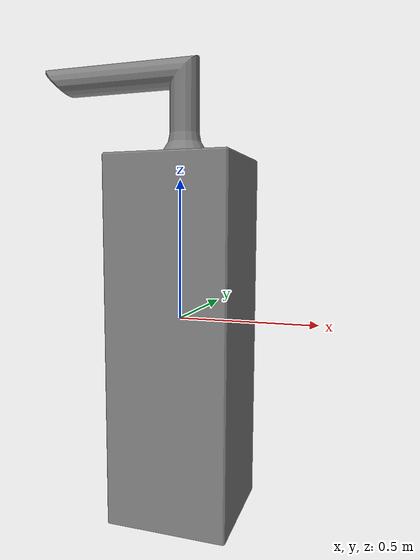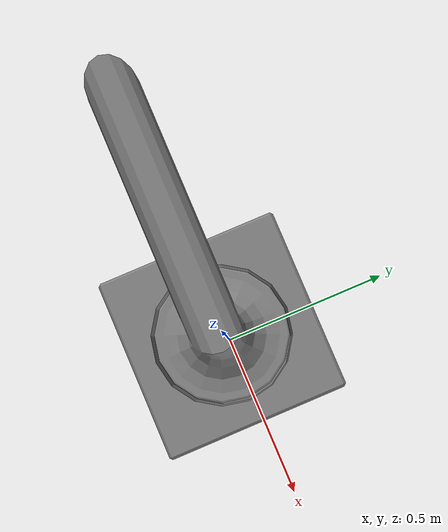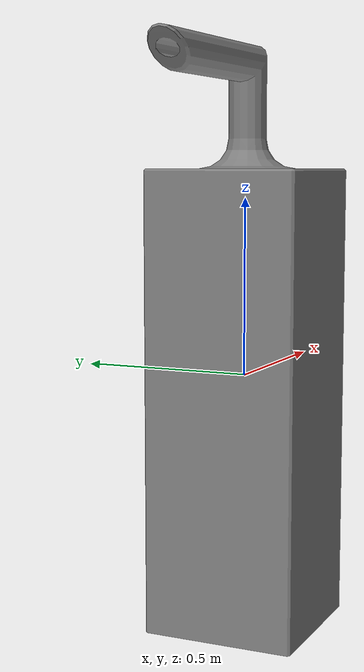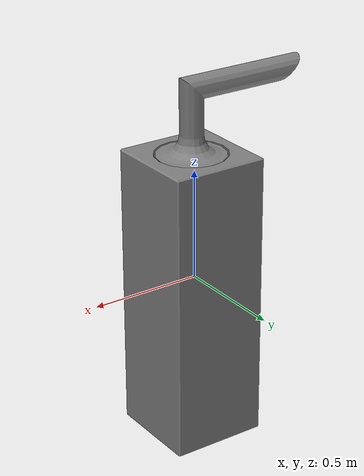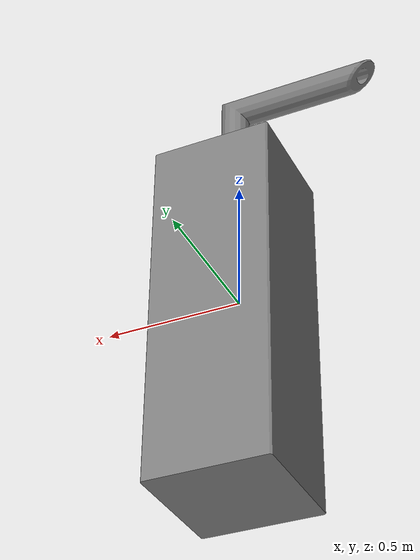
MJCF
<?xml version='1.0' encoding='UTF-8'?>
<mujoco model="partnet_76221d93ba6f391876c18e71fd49c4dc">
  <compiler angle="radian"/>
  <asset>
    <mesh name="original_1" content_type="model/obj" file="textured_objs/original_1.obj"/>
    <mesh name="original_3" content_type="model/obj" file="textured_objs/original_3.obj"/>
    <mesh name="original_4" content_type="model/obj" file="textured_objs/original_4.obj"/>
  </asset>
  <worldbody>
    <body name="base">
      <body name="link_0" quat="0.5 0.5 -0.5 -0.5">
        <geom type="mesh" mesh="original_1"/>
        <body name="link_1_helper" pos="0.000303 0 -0.0149805">
          <inertial pos="0 0 0" mass="1e-06" diaginertia="1e-10 1e-10 1e-10"/>
          <joint name="joint_2" pos="0 0 0" axis="0 -1 0" type="slide" range="0 0.048"/>
          <body name="link_1">
            <joint name="joint_1" pos="0 0 0" axis="0 1 0"/>
            <geom pos="-0.000303 0 0.0149805" type="mesh" mesh="original_3"/>
            <geom pos="-0.000303 0 0.0149805" type="mesh" mesh="original_4"/>
          </body>
        </body>
      </body>
    </body>
  </worldbody>
</mujoco>
